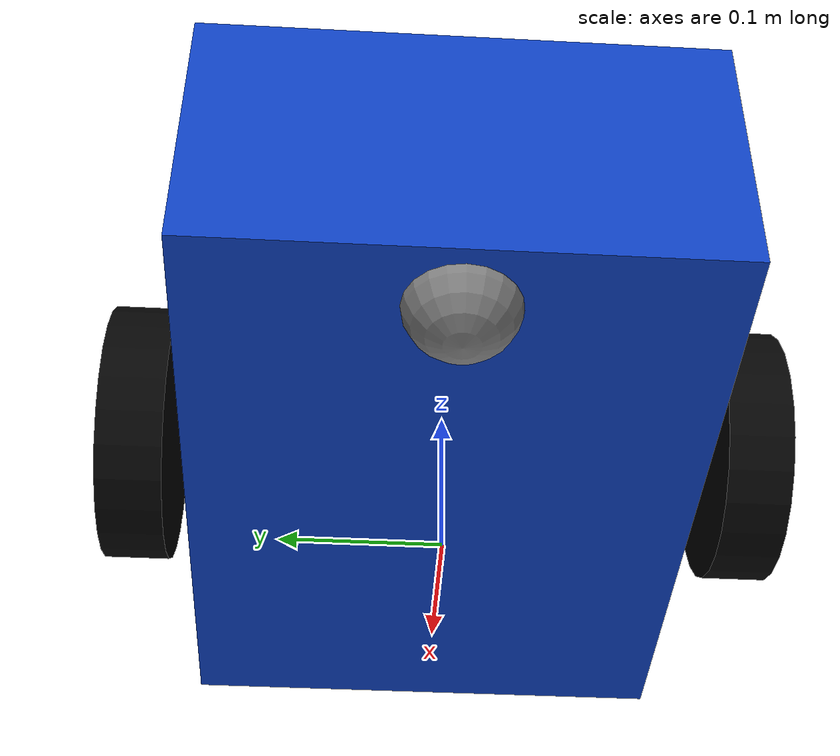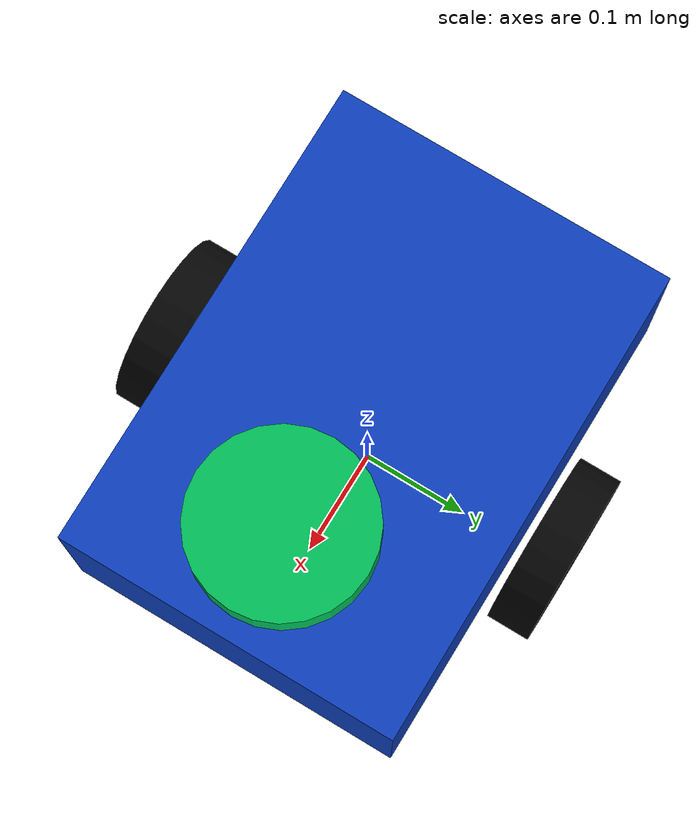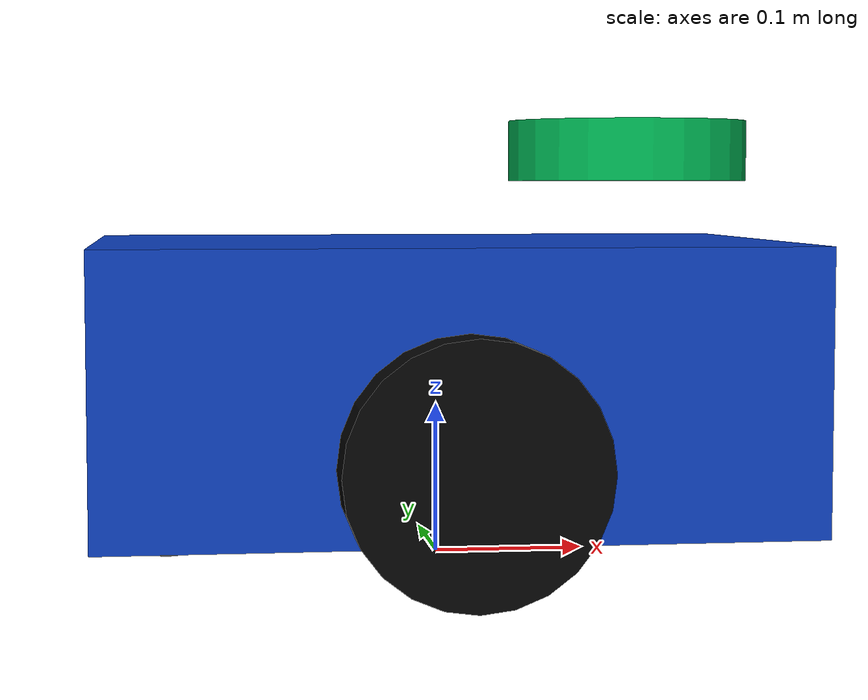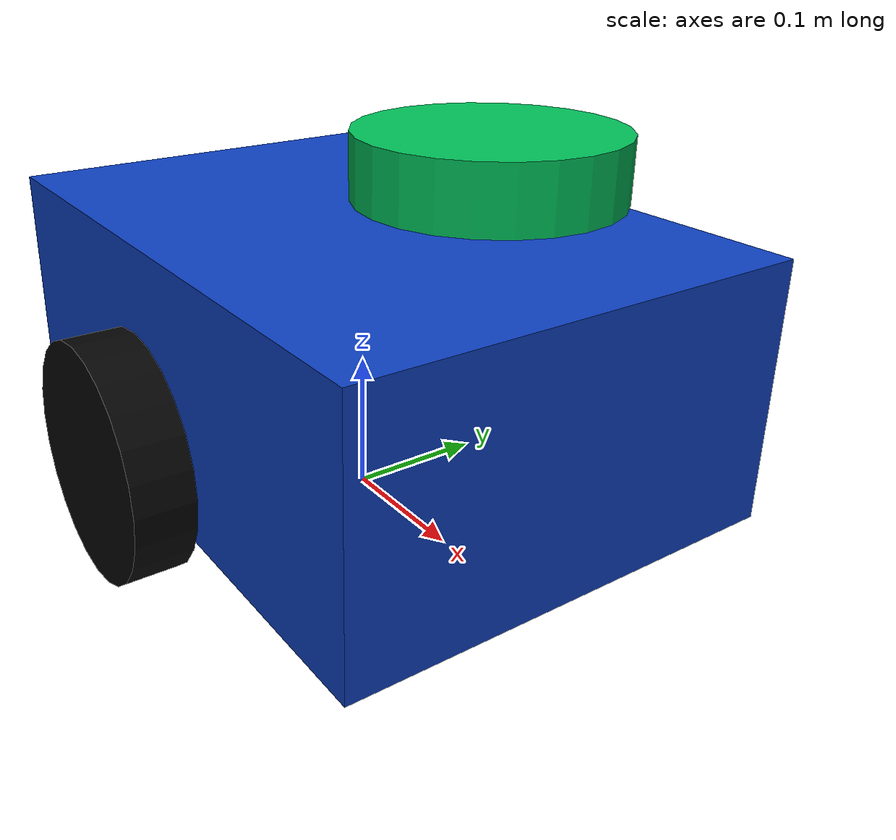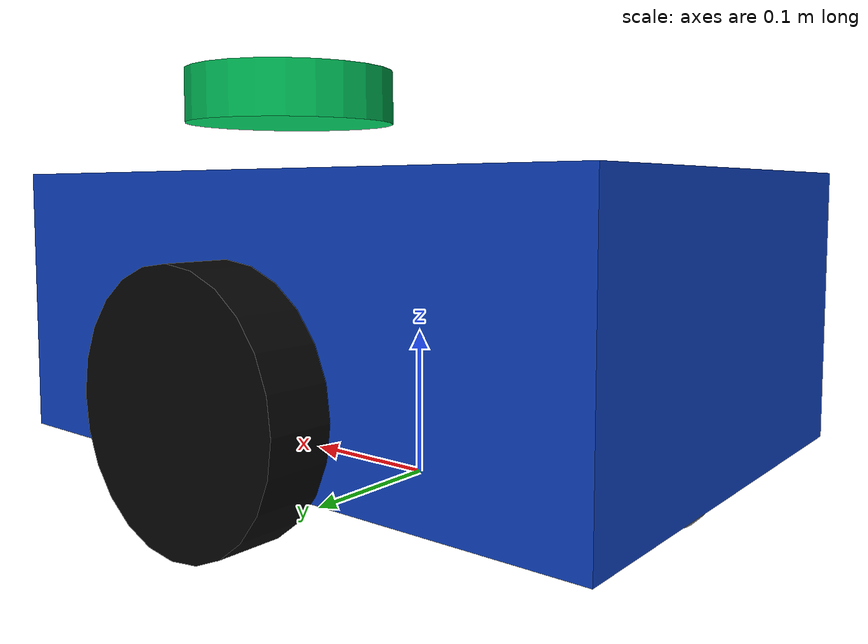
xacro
<?xml version="1.0"?>
<robot name="warehouse_bot" xmlns:xacro="http://www.ros.org/wiki/xacro">
  <xacro:property name="wheel_radius" value="0.08"/>
  <xacro:property name="wheel_width" value="0.04"/>

  <link name="base_link">
    <visual>
      <origin xyz="0 0 0.12"/>
      <geometry>
        <box size="0.45 0.32 0.18"/>
      </geometry>
      <material name="body_blue">
        <color rgba="0.05 0.25 0.75 1"/>
      </material>
    </visual>
    <collision>
      <origin xyz="0 0 0.12"/>
      <geometry>
        <box size="0.45 0.32 0.18"/>
      </geometry>
    </collision>
    <inertial>
      <origin xyz="0 0 0.12"/>
      <mass value="6.0"/>
      <inertia ixx="0.08" ixy="0" ixz="0" iyy="0.12" iyz="0" izz="0.14"/>
    </inertial>
  </link>

  <link name="left_wheel">
    <visual>
      <origin rpy="1.5708 0 0"/>
      <geometry>
        <cylinder radius="${wheel_radius}" length="${wheel_width}"/>
      </geometry>
      <material name="wheel_black">
        <color rgba="0.02 0.02 0.02 1"/>
      </material>
    </visual>
    <collision>
      <origin rpy="1.5708 0 0"/>
      <geometry>
        <cylinder radius="${wheel_radius}" length="${wheel_width}"/>
      </geometry>
    </collision>
    <inertial>
      <mass value="0.5"/>
      <inertia ixx="0.001" ixy="0" ixz="0" iyy="0.001" iyz="0" izz="0.001"/>
    </inertial>
  </link>

  <link name="right_wheel">
    <visual>
      <origin rpy="1.5708 0 0"/>
      <geometry>
        <cylinder radius="${wheel_radius}" length="${wheel_width}"/>
      </geometry>
      <material name="wheel_black"/>
    </visual>
    <collision>
      <origin rpy="1.5708 0 0"/>
      <geometry>
        <cylinder radius="${wheel_radius}" length="${wheel_width}"/>
      </geometry>
    </collision>
    <inertial>
      <mass value="0.5"/>
      <inertia ixx="0.001" ixy="0" ixz="0" iyy="0.001" iyz="0" izz="0.001"/>
    </inertial>
  </link>

  <link name="caster">
    <visual>
      <geometry>
        <sphere radius="0.035"/>
      </geometry>
      <material name="caster_gray">
        <color rgba="0.5 0.5 0.5 1"/>
      </material>
    </visual>
    <collision>
      <geometry>
        <sphere radius="0.035"/>
      </geometry>
    </collision>
    <inertial>
      <mass value="0.1"/>
      <inertia ixx="0.0001" ixy="0" ixz="0" iyy="0.0001" iyz="0" izz="0.0001"/>
    </inertial>
  </link>

  <link name="laser_link">
    <visual>
      <origin xyz="0 0 0.02"/>
      <geometry>
        <cylinder radius="0.08" length="0.04"/>
      </geometry>
      <material name="lidar_green">
        <color rgba="0.0 0.75 0.35 1"/>
      </material>
    </visual>
    <collision>
      <origin xyz="0 0 0.02"/>
      <geometry>
        <cylinder radius="0.08" length="0.04"/>
      </geometry>
    </collision>
    <inertial>
      <mass value="0.2"/>
      <inertia ixx="0.0002" ixy="0" ixz="0" iyy="0.0002" iyz="0" izz="0.0002"/>
    </inertial>
  </link>

  <joint name="left_wheel_joint" type="continuous">
    <parent link="base_link"/>
    <child link="left_wheel"/>
    <origin xyz="0 0.19 0.08" rpy="0 0 0"/>
    <axis xyz="0 1 0"/>
  </joint>

  <joint name="right_wheel_joint" type="continuous">
    <parent link="base_link"/>
    <child link="right_wheel"/>
    <origin xyz="0 -0.19 0.08" rpy="0 0 0"/>
    <axis xyz="0 1 0"/>
  </joint>

  <joint name="caster_joint" type="fixed">
    <parent link="base_link"/>
    <child link="caster"/>
    <origin xyz="-0.18 0 0.035"/>
  </joint>

  <joint name="laser_joint" type="fixed">
    <parent link="base_link"/>
    <child link="laser_link"/>
    <origin xyz="0.13 0 0.25"/>
  </joint>

  <gazebo reference="laser_link">
    <sensor name="warehouse_lidar" type="ray">
      <always_on>true</always_on>
      <update_rate>10</update_rate>
      <ray>
        <scan>
          <horizontal>
            <samples>181</samples>
            <resolution>1</resolution>
            <min_angle>-1.5708</min_angle>
            <max_angle>1.5708</max_angle>
          </horizontal>
        </scan>
        <range>
          <min>0.1</min>
          <max>8.0</max>
          <resolution>0.02</resolution>
        </range>
      </ray>
      <plugin name="gazebo_ros_laser" filename="libgazebo_ros_ray_sensor.so">
        <ros>
          <remapping>~/out:=scan</remapping>
        </ros>
        <output_type>sensor_msgs/LaserScan</output_type>
        <frame_name>laser_link</frame_name>
      </plugin>
    </sensor>
  </gazebo>

  <gazebo>
    <plugin name="warehouse_diff_drive" filename="libgazebo_ros_diff_drive.so">
      <ros>
        <remapping>cmd_vel:=cmd_vel</remapping>
        <remapping>odom:=odom</remapping>
      </ros>
      <left_joint>left_wheel_joint</left_joint>
      <right_joint>right_wheel_joint</right_joint>
      <wheel_separation>0.38</wheel_separation>
      <wheel_diameter>0.16</wheel_diameter>
      <max_wheel_torque>20</max_wheel_torque>
      <max_wheel_acceleration>1.0</max_wheel_acceleration>
      <publish_odom>true</publish_odom>
      <publish_odom_tf>true</publish_odom_tf>
      <publish_wheel_tf>true</publish_wheel_tf>
      <odometry_frame>odom</odometry_frame>
      <robot_base_frame>base_link</robot_base_frame>
    </plugin>
  </gazebo>
</robot>
